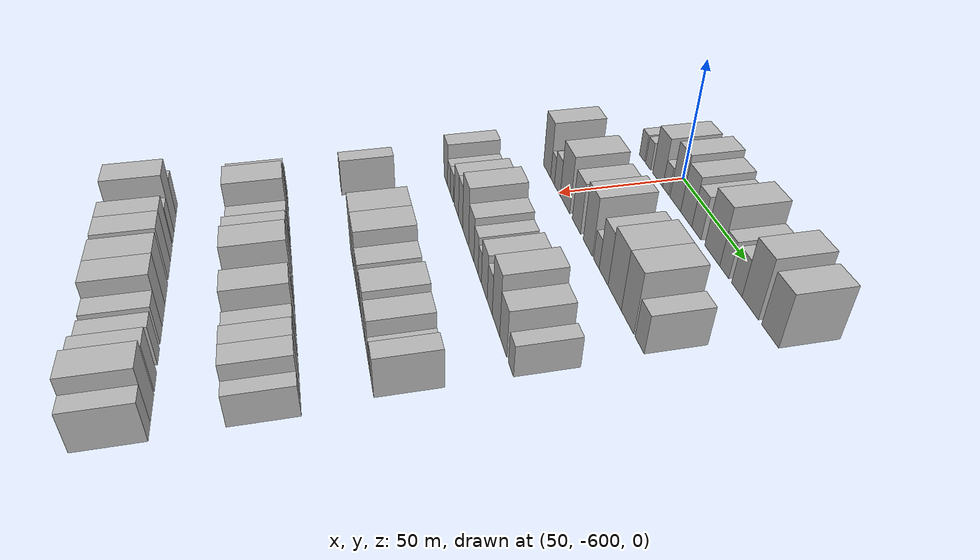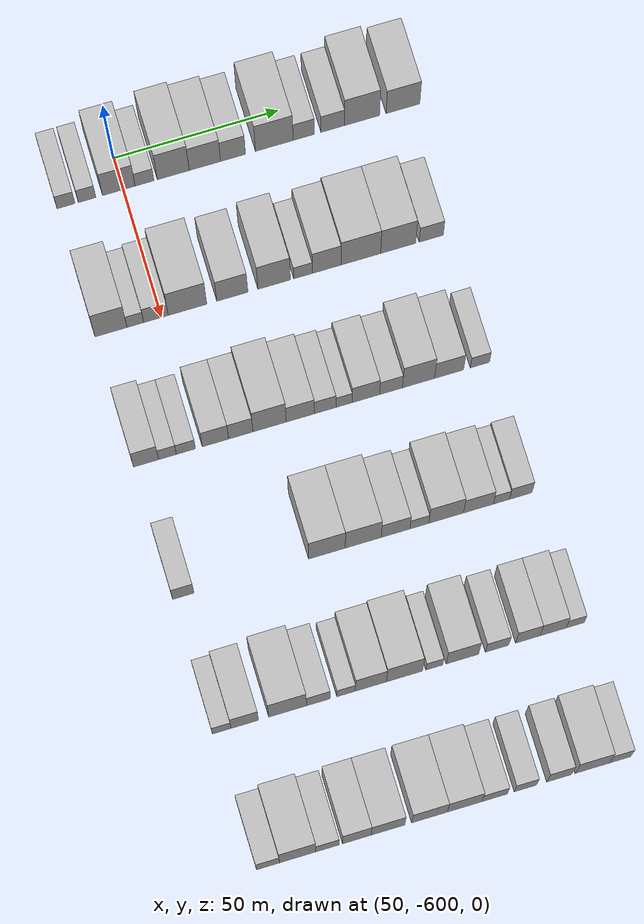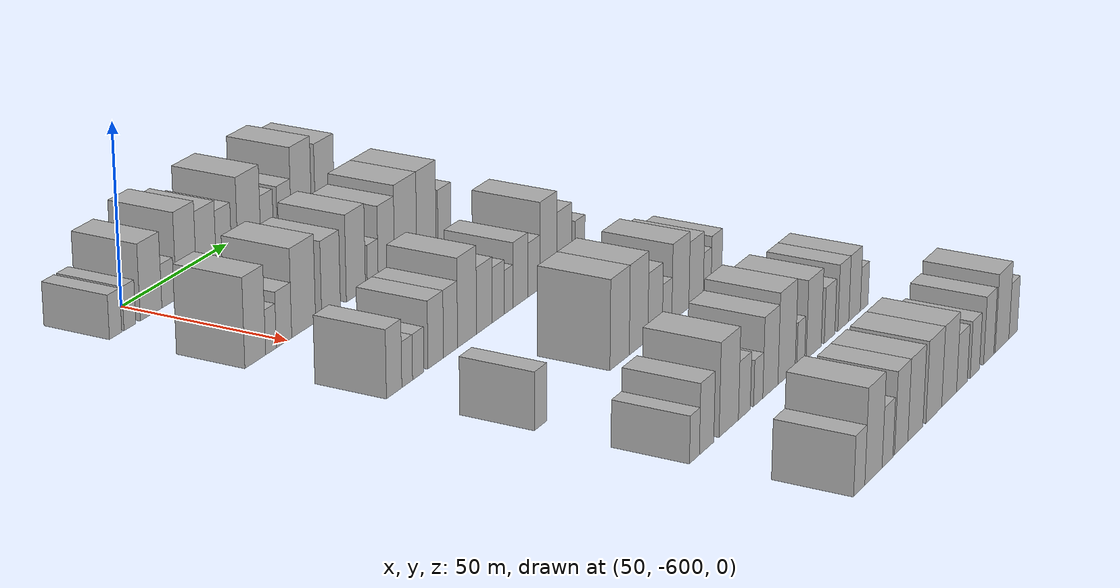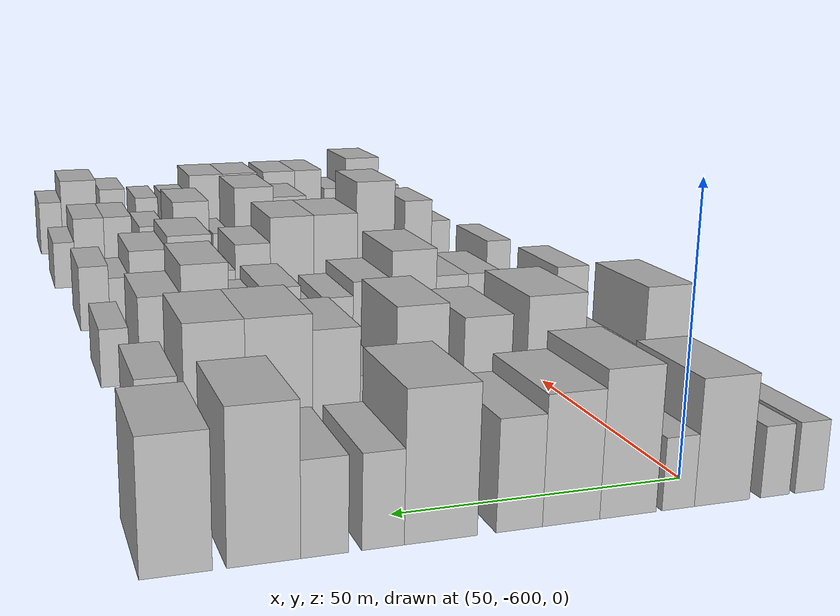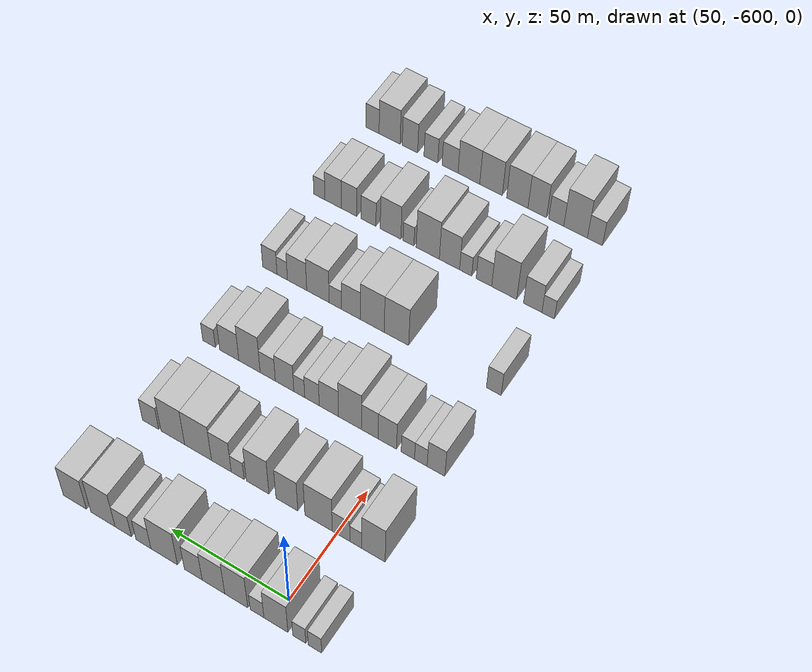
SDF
<sdf version="1.6">
 <world name="default">
  <model name="building_1">
   <static>1</static>
   <pose>50.0000 -617.2801 0 0.000000 0.000000 0.000000</pose>
   <link name="link">
    <pose>0 0 6.00 0 0 0</pose>
    <collision name="collision"><geometry><box><size>20.0000 5.4398 12.0000</size></box></geometry></collision>
    <visual name="visual">
     <cast_shadows>0</cast_shadows>
     <geometry><box><size>20.0000 5.4398 12.0000</size></box></geometry>
     <material>
      <script>
       <uri>model://HANNAS_wall/materials/scripts</uri>
       <uri>model://HANNAS_wall/materials/textures</uri>
       <name>vrc/HANNAS_wall</name>
      </script>
     </material>
    </visual>
   </link>
  </model>
  <model name="building_2">
   <static>1</static>
   <pose>50.0000 -610.9079 0 0.000000 0.000000 0.000000</pose>
   <link name="link">
    <pose>0 0 6.00 0 0 0</pose>
    <collision name="collision"><geometry><box><size>20.0000 5.3046 12.0000</size></box></geometry></collision>
    <visual name="visual">
     <cast_shadows>0</cast_shadows>
     <geometry><box><size>20.0000 5.3046 12.0000</size></box></geometry>
     <material>
      <script>
       <uri>model://HANNAS_wall/materials/scripts</uri>
       <uri>model://HANNAS_wall/materials/textures</uri>
       <name>vrc/HANNAS_wall</name>
      </script>
     </material>
    </visual>
   </link>
  </model>
  <model name="building_3">
   <static>1</static>
   <pose>50.0000 -601.3208 0 0.000000 0.000000 0.000000</pose>
   <link name="link">
    <pose>0 0 10.50 0 0 0</pose>
    <collision name="collision"><geometry><box><size>20.0000 9.8697 21.0000</size></box></geometry></collision>
    <visual name="visual">
     <cast_shadows>0</cast_shadows>
     <geometry><box><size>20.0000 9.8697 21.0000</size></box></geometry>
     <material>
      <script>
       <uri>model://HANNAS_wall/materials/scripts</uri>
       <uri>model://HANNAS_wall/materials/textures</uri>
       <name>vrc/HANNAS_wall</name>
      </script>
     </material>
    </visual>
   </link>
  </model>
  <model name="building_4">
   <static>1</static>
   <pose>50.0000 -593.5376 0 0.000000 0.000000 0.000000</pose>
   <link name="link">
    <pose>0 0 6.00 0 0 0</pose>
    <collision name="collision"><geometry><box><size>20.0000 5.6966 12.0000</size></box></geometry></collision>
    <visual name="visual">
     <cast_shadows>0</cast_shadows>
     <geometry><box><size>20.0000 5.6966 12.0000</size></box></geometry>
     <material>
      <script>
       <uri>model://HANNAS_wall/materials/scripts</uri>
       <uri>model://HANNAS_wall/materials/textures</uri>
       <name>vrc/HANNAS_wall</name>
      </script>
     </material>
    </visual>
   </link>
  </model>
  <model name="building_5">
   <static>1</static>
   <pose>50.0000 -584.8576 0 0.000000 0.000000 0.000000</pose>
   <link name="link">
    <pose>0 0 12.00 0 0 0</pose>
    <collision name="collision"><geometry><box><size>20.0000 9.6634 24.0000</size></box></geometry></collision>
    <visual name="visual">
     <cast_shadows>0</cast_shadows>
     <geometry><box><size>20.0000 9.6634 24.0000</size></box></geometry>
     <material>
      <script>
       <uri>model://HANNAS_wall/materials/scripts</uri>
       <uri>model://HANNAS_wall/materials/textures</uri>
       <name>vrc/HANNAS_wall</name>
      </script>
     </material>
    </visual>
   </link>
  </model>
  <model name="building_6">
   <static>1</static>
   <pose>50.0000 -575.2569 0 0.000000 0.000000 0.000000</pose>
   <link name="link">
    <pose>0 0 10.50 0 0 0</pose>
    <collision name="collision"><geometry><box><size>20.0000 9.5381 21.0000</size></box></geometry></collision>
    <visual name="visual">
     <cast_shadows>0</cast_shadows>
     <geometry><box><size>20.0000 9.5381 21.0000</size></box></geometry>
     <material>
      <script>
       <uri>model://HANNAS_wall/materials/scripts</uri>
       <uri>model://HANNAS_wall/materials/textures</uri>
       <name>vrc/HANNAS_wall</name>
      </script>
     </material>
    </visual>
   </link>
  </model>
  <model name="building_7">
   <static>1</static>
   <pose>50.0000 -566.7145 0 0.000000 0.000000 0.000000</pose>
   <link name="link">
    <pose>0 0 9.00 0 0 0</pose>
    <collision name="collision"><geometry><box><size>20.0000 7.5467 18.0000</size></box></geometry></collision>
    <visual name="visual">
     <cast_shadows>0</cast_shadows>
     <geometry><box><size>20.0000 7.5467 18.0000</size></box></geometry>
     <material>
      <script>
       <uri>model://HANNAS_wall/materials/scripts</uri>
       <uri>model://HANNAS_wall/materials/textures</uri>
       <name>vrc/HANNAS_wall</name>
      </script>
     </material>
    </visual>
   </link>
  </model>
  <model name="building_8">
   <static>1</static>
   <pose>50.0000 -554.2117 0 0.000000 0.000000 0.000000</pose>
   <link name="link">
    <pose>0 0 12.00 0 0 0</pose>
    <collision name="collision"><geometry><box><size>20.0000 11.4588 24.0000</size></box></geometry></collision>
    <visual name="visual">
     <cast_shadows>0</cast_shadows>
     <geometry><box><size>20.0000 11.4588 24.0000</size></box></geometry>
     <material>
      <script>
       <uri>model://HANNAS_wall/materials/scripts</uri>
       <uri>model://HANNAS_wall/materials/textures</uri>
       <name>vrc/HANNAS_wall</name>
      </script>
     </material>
    </visual>
   </link>
  </model>
  <model name="building_9">
   <static>1</static>
   <pose>50.0000 -545.2420 0 0.000000 0.000000 0.000000</pose>
   <link name="link">
    <pose>0 0 7.50 0 0 0</pose>
    <collision name="collision"><geometry><box><size>20.0000 6.4806 15.0000</size></box></geometry></collision>
    <visual name="visual">
     <cast_shadows>0</cast_shadows>
     <geometry><box><size>20.0000 6.4806 15.0000</size></box></geometry>
     <material>
      <script>
       <uri>model://HANNAS_wall/materials/scripts</uri>
       <uri>model://HANNAS_wall/materials/textures</uri>
       <name>vrc/HANNAS_wall</name>
      </script>
     </material>
    </visual>
   </link>
  </model>
  <model name="building_10">
   <static>1</static>
   <pose>50.0000 -536.4293 0 0.000000 0.000000 0.000000</pose>
   <link name="link">
    <pose>0 0 7.50 0 0 0</pose>
    <collision name="collision"><geometry><box><size>20.0000 7.1450 15.0000</size></box></geometry></collision>
    <visual name="visual">
     <cast_shadows>0</cast_shadows>
     <geometry><box><size>20.0000 7.1450 15.0000</size></box></geometry>
     <material>
      <script>
       <uri>model://HANNAS_wall/materials/scripts</uri>
       <uri>model://HANNAS_wall/materials/textures</uri>
       <name>vrc/HANNAS_wall</name>
      </script>
     </material>
    </visual>
   </link>
  </model>
  <model name="building_11">
   <static>1</static>
   <pose>50.0000 -527.5019 0 0.000000 0.000000 0.000000</pose>
   <link name="link">
    <pose>0 0 12.00 0 0 0</pose>
    <collision name="collision"><geometry><box><size>20.0000 10.7098 24.0000</size></box></geometry></collision>
    <visual name="visual">
     <cast_shadows>0</cast_shadows>
     <geometry><box><size>20.0000 10.7098 24.0000</size></box></geometry>
     <material>
      <script>
       <uri>model://HANNAS_wall/materials/scripts</uri>
       <uri>model://HANNAS_wall/materials/textures</uri>
       <name>vrc/HANNAS_wall</name>
      </script>
     </material>
    </visual>
   </link>
  </model>
  <model name="building_12">
   <static>1</static>
   <pose>50.0000 -514.9987 0 0.000000 0.000000 0.000000</pose>
   <link name="link">
    <pose>0 0 10.50 0 0 0</pose>
    <collision name="collision"><geometry><box><size>20.0000 10.2964 21.0000</size></box></geometry></collision>
    <visual name="visual">
     <cast_shadows>0</cast_shadows>
     <geometry><box><size>20.0000 10.2964 21.0000</size></box></geometry>
     <material>
      <script>
       <uri>model://HANNAS_wall/materials/scripts</uri>
       <uri>model://HANNAS_wall/materials/textures</uri>
       <name>vrc/HANNAS_wall</name>
      </script>
     </material>
    </visual>
   </link>
  </model>
  <model name="building_140">
   <static>1</static>
   <pose>90.0000 -615.1936 0 0.000000 0.000000 0.000000</pose>
   <link name="link">
    <pose>0 0 12.00 0 0 0</pose>
    <collision name="collision"><geometry><box><size>20.0000 9.6129 24.0000</size></box></geometry></collision>
    <visual name="visual">
     <cast_shadows>0</cast_shadows>
     <geometry><box><size>20.0000 9.6129 24.0000</size></box></geometry>
     <material>
      <script>
       <uri>model://HANNAS_wall/materials/scripts</uri>
       <uri>model://HANNAS_wall/materials/textures</uri>
       <name>vrc/HANNAS_wall</name>
      </script>
     </material>
    </visual>
   </link>
  </model>
  <model name="building_141">
   <static>1</static>
   <pose>90.0000 -607.8768 0 0.000000 0.000000 0.000000</pose>
   <link name="link">
    <pose>0 0 6.00 0 0 0</pose>
    <collision name="collision"><geometry><box><size>20.0000 5.0206 12.0000</size></box></geometry></collision>
    <visual name="visual">
     <cast_shadows>0</cast_shadows>
     <geometry><box><size>20.0000 5.0206 12.0000</size></box></geometry>
     <material>
      <script>
       <uri>model://HANNAS_wall/materials/scripts</uri>
       <uri>model://HANNAS_wall/materials/textures</uri>
       <name>vrc/HANNAS_wall</name>
      </script>
     </material>
    </visual>
   </link>
  </model>
  <model name="building_142">
   <static>1</static>
   <pose>90.0000 -601.6923 0 0.000000 0.000000 0.000000</pose>
   <link name="link">
    <pose>0 0 7.50 0 0 0</pose>
    <collision name="collision"><geometry><box><size>20.0000 7.3483 15.0000</size></box></geometry></collision>
    <visual name="visual">
     <cast_shadows>0</cast_shadows>
     <geometry><box><size>20.0000 7.3483 15.0000</size></box></geometry>
     <material>
      <script>
       <uri>model://HANNAS_wall/materials/scripts</uri>
       <uri>model://HANNAS_wall/materials/textures</uri>
       <name>vrc/HANNAS_wall</name>
      </script>
     </material>
    </visual>
   </link>
  </model>
  <model name="building_143">
   <static>1</static>
   <pose>90.0000 -592.2293 0 0.000000 0.000000 0.000000</pose>
   <link name="link">
    <pose>0 0 12.00 0 0 0</pose>
    <collision name="collision"><geometry><box><size>20.0000 11.5779 24.0000</size></box></geometry></collision>
    <visual name="visual">
     <cast_shadows>0</cast_shadows>
     <geometry><box><size>20.0000 11.5779 24.0000</size></box></geometry>
     <material>
      <script>
       <uri>model://HANNAS_wall/materials/scripts</uri>
       <uri>model://HANNAS_wall/materials/textures</uri>
       <name>vrc/HANNAS_wall</name>
      </script>
     </material>
    </visual>
   </link>
  </model>
  <model name="building_144">
   <static>1</static>
   <pose>90.0000 -578.7585 0 0.000000 0.000000 0.000000</pose>
   <link name="link">
    <pose>0 0 10.50 0 0 0</pose>
    <collision name="collision"><geometry><box><size>20.0000 9.3637 21.0000</size></box></geometry></collision>
    <visual name="visual">
     <cast_shadows>0</cast_shadows>
     <geometry><box><size>20.0000 9.3637 21.0000</size></box></geometry>
     <material>
      <script>
       <uri>model://HANNAS_wall/materials/scripts</uri>
       <uri>model://HANNAS_wall/materials/textures</uri>
       <name>vrc/HANNAS_wall</name>
      </script>
     </material>
    </visual>
   </link>
  </model>
  <model name="building_145">
   <static>1</static>
   <pose>90.0000 -566.1834 0 0.000000 0.000000 0.000000</pose>
   <link name="link">
    <pose>0 0 12.00 0 0 0</pose>
    <collision name="collision"><geometry><box><size>20.0000 9.7865 24.0000</size></box></geometry></collision>
    <visual name="visual">
     <cast_shadows>0</cast_shadows>
     <geometry><box><size>20.0000 9.7865 24.0000</size></box></geometry>
     <material>
      <script>
       <uri>model://HANNAS_wall/materials/scripts</uri>
       <uri>model://HANNAS_wall/materials/textures</uri>
       <name>vrc/HANNAS_wall</name>
      </script>
     </material>
    </visual>
   </link>
  </model>
  <model name="building_146">
   <static>1</static>
   <pose>90.0000 -557.4782 0 0.000000 0.000000 0.000000</pose>
   <link name="link">
    <pose>0 0 6.00 0 0 0</pose>
    <collision name="collision"><geometry><box><size>20.0000 5.6238 12.0000</size></box></geometry></collision>
    <visual name="visual">
     <cast_shadows>0</cast_shadows>
     <geometry><box><size>20.0000 5.6238 12.0000</size></box></geometry>
     <material>
      <script>
       <uri>model://HANNAS_wall/materials/scripts</uri>
       <uri>model://HANNAS_wall/materials/textures</uri>
       <name>vrc/HANNAS_wall</name>
      </script>
     </material>
    </visual>
   </link>
  </model>
  <model name="building_147">
   <static>1</static>
   <pose>90.0000 -550.3209 0 0.000000 0.000000 0.000000</pose>
   <link name="link">
    <pose>0 0 10.50 0 0 0</pose>
    <collision name="collision"><geometry><box><size>20.0000 8.6909 21.0000</size></box></geometry></collision>
    <visual name="visual">
     <cast_shadows>0</cast_shadows>
     <geometry><box><size>20.0000 8.6909 21.0000</size></box></geometry>
     <material>
      <script>
       <uri>model://HANNAS_wall/materials/scripts</uri>
       <uri>model://HANNAS_wall/materials/textures</uri>
       <name>vrc/HANNAS_wall</name>
      </script>
     </material>
    </visual>
   </link>
  </model>
  <model name="building_148">
   <static>1</static>
   <pose>90.0000 -540.0085 0 0.000000 0.000000 0.000000</pose>
   <link name="link">
    <pose>0 0 12.00 0 0 0</pose>
    <collision name="collision"><geometry><box><size>20.0000 11.9338 24.0000</size></box></geometry></collision>
    <visual name="visual">
     <cast_shadows>0</cast_shadows>
     <geometry><box><size>20.0000 11.9338 24.0000</size></box></geometry>
     <material>
      <script>
       <uri>model://HANNAS_wall/materials/scripts</uri>
       <uri>model://HANNAS_wall/materials/textures</uri>
       <name>vrc/HANNAS_wall</name>
      </script>
     </material>
    </visual>
   </link>
  </model>
  <model name="building_149">
   <static>1</static>
   <pose>90.0000 -528.7111 0 0.000000 0.000000 0.000000</pose>
   <link name="link">
    <pose>0 0 12.00 0 0 0</pose>
    <collision name="collision"><geometry><box><size>20.0000 10.6609 24.0000</size></box></geometry></collision>
    <visual name="visual">
     <cast_shadows>0</cast_shadows>
     <geometry><box><size>20.0000 10.6609 24.0000</size></box></geometry>
     <material>
      <script>
       <uri>model://HANNAS_wall/materials/scripts</uri>
       <uri>model://HANNAS_wall/materials/textures</uri>
       <name>vrc/HANNAS_wall</name>
      </script>
     </material>
    </visual>
   </link>
  </model>
  <model name="building_150">
   <static>1</static>
   <pose>90.0000 -518.7226 0 0.000000 0.000000 0.000000</pose>
   <link name="link">
    <pose>0 0 7.50 0 0 0</pose>
    <collision name="collision"><geometry><box><size>20.0000 7.3162 15.0000</size></box></geometry></collision>
    <visual name="visual">
     <cast_shadows>0</cast_shadows>
     <geometry><box><size>20.0000 7.3162 15.0000</size></box></geometry>
     <material>
      <script>
       <uri>model://HANNAS_wall/materials/scripts</uri>
       <uri>model://HANNAS_wall/materials/textures</uri>
       <name>vrc/HANNAS_wall</name>
      </script>
     </material>
    </visual>
   </link>
  </model>
  <model name="building_280">
   <static>1</static>
   <pose>130.0000 -616.2573 0 0.000000 0.000000 0.000000</pose>
   <link name="link">
    <pose>0 0 9.00 0 0 0</pose>
    <collision name="collision"><geometry><box><size>20.0000 7.4855 18.0000</size></box></geometry></collision>
    <visual name="visual">
     <cast_shadows>0</cast_shadows>
     <geometry><box><size>20.0000 7.4855 18.0000</size></box></geometry>
     <material>
      <script>
       <uri>model://HANNAS_wall/materials/scripts</uri>
       <uri>model://HANNAS_wall/materials/textures</uri>
       <name>vrc/HANNAS_wall</name>
      </script>
     </material>
    </visual>
   </link>
  </model>
  <model name="building_281">
   <static>1</static>
   <pose>130.0000 -609.8738 0 0.000000 0.000000 0.000000</pose>
   <link name="link">
    <pose>0 0 6.00 0 0 0</pose>
    <collision name="collision"><geometry><box><size>20.0000 5.2815 12.0000</size></box></geometry></collision>
    <visual name="visual">
     <cast_shadows>0</cast_shadows>
     <geometry><box><size>20.0000 5.2815 12.0000</size></box></geometry>
     <material>
      <script>
       <uri>model://HANNAS_wall/materials/scripts</uri>
       <uri>model://HANNAS_wall/materials/textures</uri>
       <name>vrc/HANNAS_wall</name>
      </script>
     </material>
    </visual>
   </link>
  </model>
  <model name="building_282">
   <static>1</static>
   <pose>130.0000 -604.3927 0 0.000000 0.000000 0.000000</pose>
   <link name="link">
    <pose>0 0 6.00 0 0 0</pose>
    <collision name="collision"><geometry><box><size>20.0000 5.6806 12.0000</size></box></geometry></collision>
    <visual name="visual">
     <cast_shadows>0</cast_shadows>
     <geometry><box><size>20.0000 5.6806 12.0000</size></box></geometry>
     <material>
      <script>
       <uri>model://HANNAS_wall/materials/scripts</uri>
       <uri>model://HANNAS_wall/materials/textures</uri>
       <name>vrc/HANNAS_wall</name>
      </script>
     </material>
    </visual>
   </link>
  </model>
  <model name="building_283">
   <static>1</static>
   <pose>130.0000 -595.6169 0 0.000000 0.000000 0.000000</pose>
   <link name="link">
    <pose>0 0 9.00 0 0 0</pose>
    <collision name="collision"><geometry><box><size>20.0000 7.8711 18.0000</size></box></geometry></collision>
    <visual name="visual">
     <cast_shadows>0</cast_shadows>
     <geometry><box><size>20.0000 7.8711 18.0000</size></box></geometry>
     <material>
      <script>
       <uri>model://HANNAS_wall/materials/scripts</uri>
       <uri>model://HANNAS_wall/materials/textures</uri>
       <name>vrc/HANNAS_wall</name>
      </script>
     </material>
    </visual>
   </link>
  </model>
  <model name="building_284">
   <static>1</static>
   <pose>130.0000 -588.0575 0 0.000000 0.000000 0.000000</pose>
   <link name="link">
    <pose>0 0 9.00 0 0 0</pose>
    <collision name="collision"><geometry><box><size>20.0000 7.2476 18.0000</size></box></geometry></collision>
    <visual name="visual">
     <cast_shadows>0</cast_shadows>
     <geometry><box><size>20.0000 7.2476 18.0000</size></box></geometry>
     <material>
      <script>
       <uri>model://HANNAS_wall/materials/scripts</uri>
       <uri>model://HANNAS_wall/materials/textures</uri>
       <name>vrc/HANNAS_wall</name>
      </script>
     </material>
    </visual>
   </link>
  </model>
  <model name="building_285">
   <static>1</static>
   <pose>130.0000 -579.4634 0 0.000000 0.000000 0.000000</pose>
   <link name="link">
    <pose>0 0 12.00 0 0 0</pose>
    <collision name="collision"><geometry><box><size>20.0000 9.9407 24.0000</size></box></geometry></collision>
    <visual name="visual">
     <cast_shadows>0</cast_shadows>
     <geometry><box><size>20.0000 9.9407 24.0000</size></box></geometry>
     <material>
      <script>
       <uri>model://HANNAS_wall/materials/scripts</uri>
       <uri>model://HANNAS_wall/materials/textures</uri>
       <name>vrc/HANNAS_wall</name>
      </script>
     </material>
    </visual>
   </link>
  </model>
  <model name="building_286">
   <static>1</static>
   <pose>130.0000 -570.2737 0 0.000000 0.000000 0.000000</pose>
   <link name="link">
    <pose>0 0 9.00 0 0 0</pose>
    <collision name="collision"><geometry><box><size>20.0000 8.4388 18.0000</size></box></geometry></collision>
    <visual name="visual">
     <cast_shadows>0</cast_shadows>
     <geometry><box><size>20.0000 8.4388 18.0000</size></box></geometry>
     <material>
      <script>
       <uri>model://HANNAS_wall/materials/scripts</uri>
       <uri>model://HANNAS_wall/materials/textures</uri>
       <name>vrc/HANNAS_wall</name>
      </script>
     </material>
    </visual>
   </link>
  </model>
  <model name="building_287">
   <static>1</static>
   <pose>130.0000 -562.8476 0 0.000000 0.000000 0.000000</pose>
   <link name="link">
    <pose>0 0 7.50 0 0 0</pose>
    <collision name="collision"><geometry><box><size>20.0000 6.4135 15.0000</size></box></geometry></collision>
    <visual name="visual">
     <cast_shadows>0</cast_shadows>
     <geometry><box><size>20.0000 6.4135 15.0000</size></box></geometry>
     <material>
      <script>
       <uri>model://HANNAS_wall/materials/scripts</uri>
       <uri>model://HANNAS_wall/materials/textures</uri>
       <name>vrc/HANNAS_wall</name>
      </script>
     </material>
    </visual>
   </link>
  </model>
  <model name="building_288">
   <static>1</static>
   <pose>130.0000 -557.2206 0 0.000000 0.000000 0.000000</pose>
   <link name="link">
    <pose>0 0 6.00 0 0 0</pose>
    <collision name="collision"><geometry><box><size>20.0000 4.8404 12.0000</size></box></geometry></collision>
    <visual name="visual">
     <cast_shadows>0</cast_shadows>
     <geometry><box><size>20.0000 4.8404 12.0000</size></box></geometry>
     <material>
      <script>
       <uri>model://HANNAS_wall/materials/scripts</uri>
       <uri>model://HANNAS_wall/materials/textures</uri>
       <name>vrc/HANNAS_wall</name>
      </script>
     </material>
    </visual>
   </link>
  </model>
  <model name="building_289">
   <static>1</static>
   <pose>130.0000 -550.6675 0 0.000000 0.000000 0.000000</pose>
   <link name="link">
    <pose>0 0 9.00 0 0 0</pose>
    <collision name="collision"><geometry><box><size>20.0000 8.2659 18.0000</size></box></geometry></collision>
    <visual name="visual">
     <cast_shadows>0</cast_shadows>
     <geometry><box><size>20.0000 8.2659 18.0000</size></box></geometry>
     <material>
      <script>
       <uri>model://HANNAS_wall/materials/scripts</uri>
       <uri>model://HANNAS_wall/materials/textures</uri>
       <name>vrc/HANNAS_wall</name>
      </script>
     </material>
    </visual>
   </link>
  </model>
  <model name="building_290">
   <static>1</static>
   <pose>130.0000 -543.1122 0 0.000000 0.000000 0.000000</pose>
   <link name="link">
    <pose>0 0 7.50 0 0 0</pose>
    <collision name="collision"><geometry><box><size>20.0000 6.8448 15.0000</size></box></geometry></collision>
    <visual name="visual">
     <cast_shadows>0</cast_shadows>
     <geometry><box><size>20.0000 6.8448 15.0000</size></box></geometry>
     <material>
      <script>
       <uri>model://HANNAS_wall/materials/scripts</uri>
       <uri>model://HANNAS_wall/materials/textures</uri>
       <name>vrc/HANNAS_wall</name>
      </script>
     </material>
    </visual>
   </link>
  </model>
  <model name="building_291">
   <static>1</static>
   <pose>130.0000 -534.8694 0 0.000000 0.000000 0.000000</pose>
   <link name="link">
    <pose>0 0 12.00 0 0 0</pose>
    <collision name="collision"><geometry><box><size>20.0000 9.6409 24.0000</size></box></geometry></collision>
    <visual name="visual">
     <cast_shadows>0</cast_shadows>
     <geometry><box><size>20.0000 9.6409 24.0000</size></box></geometry>
     <material>
      <script>
       <uri>model://HANNAS_wall/materials/scripts</uri>
       <uri>model://HANNAS_wall/materials/textures</uri>
       <name>vrc/HANNAS_wall</name>
      </script>
     </material>
    </visual>
   </link>
  </model>
  <model name="building_292">
   <static>1</static>
   <pose>130.0000 -525.6858 0 0.000000 0.000000 0.000000</pose>
   <link name="link">
    <pose>0 0 9.00 0 0 0</pose>
    <collision name="collision"><geometry><box><size>20.0000 8.7263 18.0000</size></box></geometry></collision>
    <visual name="visual">
     <cast_shadows>0</cast_shadows>
     <geometry><box><size>20.0000 8.7263 18.0000</size></box></geometry>
     <material>
      <script>
       <uri>model://HANNAS_wall/materials/scripts</uri>
       <uri>model://HANNAS_wall/materials/textures</uri>
       <name>vrc/HANNAS_wall</name>
      </script>
     </material>
    </visual>
   </link>
  </model>
  <model name="building_293">
   <static>1</static>
   <pose>130.0000 -516.4279 0 0.000000 0.000000 0.000000</pose>
   <link name="link">
    <pose>0 0 6.00 0 0 0</pose>
    <collision name="collision"><geometry><box><size>20.0000 5.7895 12.0000</size></box></geometry></collision>
    <visual name="visual">
     <cast_shadows>0</cast_shadows>
     <geometry><box><size>20.0000 5.7895 12.0000</size></box></geometry>
     <material>
      <script>
       <uri>model://HANNAS_wall/materials/scripts</uri>
       <uri>model://HANNAS_wall/materials/textures</uri>
       <name>vrc/HANNAS_wall</name>
      </script>
     </material>
    </visual>
   </link>
  </model>
  <model name="building_425">
   <static>1</static>
   <pose>170.0000 -616.8483 0 0.000000 0.000000 0.000000</pose>
   <link name="link">
    <pose>0 0 7.50 0 0 0</pose>
    <collision name="collision"><geometry><box><size>20.0000 6.3035 15.0000</size></box></geometry></collision>
    <visual name="visual">
     <cast_shadows>0</cast_shadows>
     <geometry><box><size>20.0000 6.3035 15.0000</size></box></geometry>
     <material>
      <script>
       <uri>model://HANNAS_wall/materials/scripts</uri>
       <uri>model://HANNAS_wall/materials/textures</uri>
       <name>vrc/HANNAS_wall</name>
      </script>
     </material>
    </visual>
   </link>
  </model>
  <model name="building_426">
   <static>1</static>
   <pose>170.0000 -574.3927 0 0.000000 0.000000 0.000000</pose>
   <link name="link">
    <pose>0 0 12.00 0 0 0</pose>
    <collision name="collision"><geometry><box><size>20.0000 10.8692 24.0000</size></box></geometry></collision>
    <visual name="visual">
     <cast_shadows>0</cast_shadows>
     <geometry><box><size>20.0000 10.8692 24.0000</size></box></geometry>
     <material>
      <script>
       <uri>model://HANNAS_wall/materials/scripts</uri>
       <uri>model://HANNAS_wall/materials/textures</uri>
       <name>vrc/HANNAS_wall</name>
      </script>
     </material>
    </visual>
   </link>
  </model>
  <model name="building_427">
   <static>1</static>
   <pose>170.0000 -563.6000 0 0.000000 0.000000 0.000000</pose>
   <link name="link">
    <pose>0 0 12.00 0 0 0</pose>
    <collision name="collision"><geometry><box><size>20.0000 10.7162 24.0000</size></box></geometry></collision>
    <visual name="visual">
     <cast_shadows>0</cast_shadows>
     <geometry><box><size>20.0000 10.7162 24.0000</size></box></geometry>
     <material>
      <script>
       <uri>model://HANNAS_wall/materials/scripts</uri>
       <uri>model://HANNAS_wall/materials/textures</uri>
       <name>vrc/HANNAS_wall</name>
      </script>
     </material>
    </visual>
   </link>
  </model>
  <model name="building_428">
   <static>1</static>
   <pose>170.0000 -553.9817 0 0.000000 0.000000 0.000000</pose>
   <link name="link">
    <pose>0 0 9.00 0 0 0</pose>
    <collision name="collision"><geometry><box><size>20.0000 8.5204 18.0000</size></box></geometry></collision>
    <visual name="visual">
     <cast_shadows>0</cast_shadows>
     <geometry><box><size>20.0000 8.5204 18.0000</size></box></geometry>
     <material>
      <script>
       <uri>model://HANNAS_wall/materials/scripts</uri>
       <uri>model://HANNAS_wall/materials/textures</uri>
       <name>vrc/HANNAS_wall</name>
      </script>
     </material>
    </visual>
   </link>
  </model>
  <model name="building_429">
   <static>1</static>
   <pose>170.0000 -546.9246 0 0.000000 0.000000 0.000000</pose>
   <link name="link">
    <pose>0 0 6.00 0 0 0</pose>
    <collision name="collision"><geometry><box><size>20.0000 5.5938 12.0000</size></box></geometry></collision>
    <visual name="visual">
     <cast_shadows>0</cast_shadows>
     <geometry><box><size>20.0000 5.5938 12.0000</size></box></geometry>
     <material>
      <script>
       <uri>model://HANNAS_wall/materials/scripts</uri>
       <uri>model://HANNAS_wall/materials/textures</uri>
       <name>vrc/HANNAS_wall</name>
      </script>
     </material>
    </visual>
   </link>
  </model>
  <model name="building_430">
   <static>1</static>
   <pose>170.0000 -538.9637 0 0.000000 0.000000 0.000000</pose>
   <link name="link">
    <pose>0 0 10.50 0 0 0</pose>
    <collision name="collision"><geometry><box><size>20.0000 10.3280 21.0000</size></box></geometry></collision>
    <visual name="visual">
     <cast_shadows>0</cast_shadows>
     <geometry><box><size>20.0000 10.3280 21.0000</size></box></geometry>
     <material>
      <script>
       <uri>model://HANNAS_wall/materials/scripts</uri>
       <uri>model://HANNAS_wall/materials/textures</uri>
       <name>vrc/HANNAS_wall</name>
      </script>
     </material>
    </visual>
   </link>
  </model>
  <model name="building_431">
   <static>1</static>
   <pose>170.0000 -529.3490 0 0.000000 0.000000 0.000000</pose>
   <link name="link">
    <pose>0 0 9.00 0 0 0</pose>
    <collision name="collision"><geometry><box><size>20.0000 8.9014 18.0000</size></box></geometry></collision>
    <visual name="visual">
     <cast_shadows>0</cast_shadows>
     <geometry><box><size>20.0000 8.9014 18.0000</size></box></geometry>
     <material>
      <script>
       <uri>model://HANNAS_wall/materials/scripts</uri>
       <uri>model://HANNAS_wall/materials/textures</uri>
       <name>vrc/HANNAS_wall</name>
      </script>
     </material>
    </visual>
   </link>
  </model>
  <model name="building_432">
   <static>1</static>
   <pose>170.0000 -522.4739 0 0.000000 0.000000 0.000000</pose>
   <link name="link">
    <pose>0 0 6.00 0 0 0</pose>
    <collision name="collision"><geometry><box><size>20.0000 4.8488 12.0000</size></box></geometry></collision>
    <visual name="visual">
     <cast_shadows>0</cast_shadows>
     <geometry><box><size>20.0000 4.8488 12.0000</size></box></geometry>
     <material>
      <script>
       <uri>model://HANNAS_wall/materials/scripts</uri>
       <uri>model://HANNAS_wall/materials/textures</uri>
       <name>vrc/HANNAS_wall</name>
      </script>
     </material>
    </visual>
   </link>
  </model>
  <model name="building_433">
   <static>1</static>
   <pose>170.0000 -516.6958 0 0.000000 0.000000 0.000000</pose>
   <link name="link">
    <pose>0 0 7.50 0 0 0</pose>
    <collision name="collision"><geometry><box><size>20.0000 6.7074 15.0000</size></box></geometry></collision>
    <visual name="visual">
     <cast_shadows>0</cast_shadows>
     <geometry><box><size>20.0000 6.7074 15.0000</size></box></geometry>
     <material>
      <script>
       <uri>model://HANNAS_wall/materials/scripts</uri>
       <uri>model://HANNAS_wall/materials/textures</uri>
       <name>vrc/HANNAS_wall</name>
      </script>
     </material>
    </visual>
   </link>
  </model>
  <model name="building_570">
   <static>1</static>
   <pose>210.0000 -617.2837 0 0.000000 0.000000 0.000000</pose>
   <link name="link">
    <pose>0 0 6.00 0 0 0</pose>
    <collision name="collision"><geometry><box><size>20.0000 5.4326 12.0000</size></box></geometry></collision>
    <visual name="visual">
     <cast_shadows>0</cast_shadows>
     <geometry><box><size>20.0000 5.4326 12.0000</size></box></geometry>
     <material>
      <script>
       <uri>model://HANNAS_wall/materials/scripts</uri>
       <uri>model://HANNAS_wall/materials/textures</uri>
       <name>vrc/HANNAS_wall</name>
      </script>
     </material>
    </visual>
   </link>
  </model>
  <model name="building_571">
   <static>1</static>
   <pose>210.0000 -610.5529 0 0.000000 0.000000 0.000000</pose>
   <link name="link">
    <pose>0 0 9.00 0 0 0</pose>
    <collision name="collision"><geometry><box><size>20.0000 8.0291 18.0000</size></box></geometry></collision>
    <visual name="visual">
     <cast_shadows>0</cast_shadows>
     <geometry><box><size>20.0000 8.0291 18.0000</size></box></geometry>
     <material>
      <script>
       <uri>model://HANNAS_wall/materials/scripts</uri>
       <uri>model://HANNAS_wall/materials/textures</uri>
       <name>vrc/HANNAS_wall</name>
      </script>
     </material>
    </visual>
   </link>
  </model>
  <model name="building_572">
   <static>1</static>
   <pose>210.0000 -597.9967 0 0.000000 0.000000 0.000000</pose>
   <link name="link">
    <pose>0 0 12.00 0 0 0</pose>
    <collision name="collision"><geometry><box><size>20.0000 11.0832 24.0000</size></box></geometry></collision>
    <visual name="visual">
     <cast_shadows>0</cast_shadows>
     <geometry><box><size>20.0000 11.0832 24.0000</size></box></geometry>
     <material>
      <script>
       <uri>model://HANNAS_wall/materials/scripts</uri>
       <uri>model://HANNAS_wall/materials/textures</uri>
       <name>vrc/HANNAS_wall</name>
      </script>
     </material>
    </visual>
   </link>
  </model>
  <model name="building_573">
   <static>1</static>
   <pose>210.0000 -588.9961 0 0.000000 0.000000 0.000000</pose>
   <link name="link">
    <pose>0 0 7.50 0 0 0</pose>
    <collision name="collision"><geometry><box><size>20.0000 6.9182 15.0000</size></box></geometry></collision>
    <visual name="visual">
     <cast_shadows>0</cast_shadows>
     <geometry><box><size>20.0000 6.9182 15.0000</size></box></geometry>
     <material>
      <script>
       <uri>model://HANNAS_wall/materials/scripts</uri>
       <uri>model://HANNAS_wall/materials/textures</uri>
       <name>vrc/HANNAS_wall</name>
      </script>
     </material>
    </visual>
   </link>
  </model>
  <model name="building_574">
   <static>1</static>
   <pose>210.0000 -580.8148 0 0.000000 0.000000 0.000000</pose>
   <link name="link">
    <pose>0 0 6.00 0 0 0</pose>
    <collision name="collision"><geometry><box><size>20.0000 5.4444 12.0000</size></box></geometry></collision>
    <visual name="visual">
     <cast_shadows>0</cast_shadows>
     <geometry><box><size>20.0000 5.4444 12.0000</size></box></geometry>
     <material>
      <script>
       <uri>model://HANNAS_wall/materials/scripts</uri>
       <uri>model://HANNAS_wall/materials/textures</uri>
       <name>vrc/HANNAS_wall</name>
      </script>
     </material>
    </visual>
   </link>
  </model>
  <model name="building_575">
   <static>1</static>
   <pose>210.0000 -573.5109 0 0.000000 0.000000 0.000000</pose>
   <link name="link">
    <pose>0 0 10.50 0 0 0</pose>
    <collision name="collision"><geometry><box><size>20.0000 9.1635 21.0000</size></box></geometry></collision>
    <visual name="visual">
     <cast_shadows>0</cast_shadows>
     <geometry><box><size>20.0000 9.1635 21.0000</size></box></geometry>
     <material>
      <script>
       <uri>model://HANNAS_wall/materials/scripts</uri>
       <uri>model://HANNAS_wall/materials/textures</uri>
       <name>vrc/HANNAS_wall</name>
      </script>
     </material>
    </visual>
   </link>
  </model>
  <model name="building_576">
   <static>1</static>
   <pose>210.0000 -563.6292 0 0.000000 0.000000 0.000000</pose>
   <link name="link">
    <pose>0 0 12.00 0 0 0</pose>
    <collision name="collision"><geometry><box><size>20.0000 10.6000 24.0000</size></box></geometry></collision>
    <visual name="visual">
     <cast_shadows>0</cast_shadows>
     <geometry><box><size>20.0000 10.6000 24.0000</size></box></geometry>
     <material>
      <script>
       <uri>model://HANNAS_wall/materials/scripts</uri>
       <uri>model://HANNAS_wall/materials/textures</uri>
       <name>vrc/HANNAS_wall</name>
      </script>
     </material>
    </visual>
   </link>
  </model>
  <model name="building_577">
   <static>1</static>
   <pose>210.0000 -554.8357 0 0.000000 0.000000 0.000000</pose>
   <link name="link">
    <pose>0 0 6.00 0 0 0</pose>
    <collision name="collision"><geometry><box><size>20.0000 4.9869 12.0000</size></box></geometry></collision>
    <visual name="visual">
     <cast_shadows>0</cast_shadows>
     <geometry><box><size>20.0000 4.9869 12.0000</size></box></geometry>
     <material>
      <script>
       <uri>model://HANNAS_wall/materials/scripts</uri>
       <uri>model://HANNAS_wall/materials/textures</uri>
       <name>vrc/HANNAS_wall</name>
      </script>
     </material>
    </visual>
   </link>
  </model>
  <model name="building_578">
   <static>1</static>
   <pose>210.0000 -546.5599 0 0.000000 0.000000 0.000000</pose>
   <link name="link">
    <pose>0 0 10.50 0 0 0</pose>
    <collision name="collision"><geometry><box><size>20.0000 9.5647 21.0000</size></box></geometry></collision>
    <visual name="visual">
     <cast_shadows>0</cast_shadows>
     <geometry><box><size>20.0000 9.5647 21.0000</size></box></geometry>
     <material>
      <script>
       <uri>model://HANNAS_wall/materials/scripts</uri>
       <uri>model://HANNAS_wall/materials/textures</uri>
       <name>vrc/HANNAS_wall</name>
      </script>
     </material>
    </visual>
   </link>
  </model>
  <model name="building_579">
   <static>1</static>
   <pose>210.0000 -536.3111 0 0.000000 0.000000 0.000000</pose>
   <link name="link">
    <pose>0 0 7.50 0 0 0</pose>
    <collision name="collision"><geometry><box><size>20.0000 6.9329 15.0000</size></box></geometry></collision>
    <visual name="visual">
     <cast_shadows>0</cast_shadows>
     <geometry><box><size>20.0000 6.9329 15.0000</size></box></geometry>
     <material>
      <script>
       <uri>model://HANNAS_wall/materials/scripts</uri>
       <uri>model://HANNAS_wall/materials/textures</uri>
       <name>vrc/HANNAS_wall</name>
      </script>
     </material>
    </visual>
   </link>
  </model>
  <model name="building_580">
   <static>1</static>
   <pose>210.0000 -527.2175 0 0.000000 0.000000 0.000000</pose>
   <link name="link">
    <pose>0 0 9.00 0 0 0</pose>
    <collision name="collision"><geometry><box><size>20.0000 7.2542 18.0000</size></box></geometry></collision>
    <visual name="visual">
     <cast_shadows>0</cast_shadows>
     <geometry><box><size>20.0000 7.2542 18.0000</size></box></geometry>
     <material>
      <script>
       <uri>model://HANNAS_wall/materials/scripts</uri>
       <uri>model://HANNAS_wall/materials/textures</uri>
       <name>vrc/HANNAS_wall</name>
      </script>
     </material>
    </visual>
   </link>
  </model>
  <model name="building_581">
   <static>1</static>
   <pose>210.0000 -519.7005 0 0.000000 0.000000 0.000000</pose>
   <link name="link">
    <pose>0 0 9.00 0 0 0</pose>
    <collision name="collision"><geometry><box><size>20.0000 7.7799 18.0000</size></box></geometry></collision>
    <visual name="visual">
     <cast_shadows>0</cast_shadows>
     <geometry><box><size>20.0000 7.7799 18.0000</size></box></geometry>
     <material>
      <script>
       <uri>model://HANNAS_wall/materials/scripts</uri>
       <uri>model://HANNAS_wall/materials/textures</uri>
       <name>vrc/HANNAS_wall</name>
      </script>
     </material>
    </visual>
   </link>
  </model>
  <model name="building_582">
   <static>1</static>
   <pose>210.0000 -513.1430 0 0.000000 0.000000 0.000000</pose>
   <link name="link">
    <pose>0 0 6.00 0 0 0</pose>
    <collision name="collision"><geometry><box><size>20.0000 5.3351 12.0000</size></box></geometry></collision>
    <visual name="visual">
     <cast_shadows>0</cast_shadows>
     <geometry><box><size>20.0000 5.3351 12.0000</size></box></geometry>
     <material>
      <script>
       <uri>model://HANNAS_wall/materials/scripts</uri>
       <uri>model://HANNAS_wall/materials/textures</uri>
       <name>vrc/HANNAS_wall</name>
      </script>
     </material>
    </visual>
   </link>
  </model>
  <model name="building_715">
   <static>1</static>
   <pose>250.0000 -615.6459 0 0.000000 0.000000 0.000000</pose>
   <link name="link">
    <pose>0 0 7.50 0 0 0</pose>
    <collision name="collision"><geometry><box><size>20.0000 6.7081 15.0000</size></box></geometry></collision>
    <visual name="visual">
     <cast_shadows>0</cast_shadows>
     <geometry><box><size>20.0000 6.7081 15.0000</size></box></geometry>
     <material>
      <script>
       <uri>model://HANNAS_wall/materials/scripts</uri>
       <uri>model://HANNAS_wall/materials/textures</uri>
       <name>vrc/HANNAS_wall</name>
      </script>
     </material>
    </visual>
   </link>
  </model>
  <model name="building_716">
   <static>1</static>
   <pose>250.0000 -607.0225 0 0.000000 0.000000 0.000000</pose>
   <link name="link">
    <pose>0 0 12.00 0 0 0</pose>
    <collision name="collision"><geometry><box><size>20.0000 10.5388 24.0000</size></box></geometry></collision>
    <visual name="visual">
     <cast_shadows>0</cast_shadows>
     <geometry><box><size>20.0000 10.5388 24.0000</size></box></geometry>
     <material>
      <script>
       <uri>model://HANNAS_wall/materials/scripts</uri>
       <uri>model://HANNAS_wall/materials/textures</uri>
       <name>vrc/HANNAS_wall</name>
      </script>
     </material>
    </visual>
   </link>
  </model>
  <model name="building_717">
   <static>1</static>
   <pose>250.0000 -598.3707 0 0.000000 0.000000 0.000000</pose>
   <link name="link">
    <pose>0 0 7.50 0 0 0</pose>
    <collision name="collision"><geometry><box><size>20.0000 6.7648 15.0000</size></box></geometry></collision>
    <visual name="visual">
     <cast_shadows>0</cast_shadows>
     <geometry><box><size>20.0000 6.7648 15.0000</size></box></geometry>
     <material>
      <script>
       <uri>model://HANNAS_wall/materials/scripts</uri>
       <uri>model://HANNAS_wall/materials/textures</uri>
       <name>vrc/HANNAS_wall</name>
      </script>
     </material>
    </visual>
   </link>
  </model>
  <model name="building_718">
   <static>1</static>
   <pose>250.0000 -589.7866 0 0.000000 0.000000 0.000000</pose>
   <link name="link">
    <pose>0 0 10.50 0 0 0</pose>
    <collision name="collision"><geometry><box><size>20.0000 8.4034 21.0000</size></box></geometry></collision>
    <visual name="visual">
     <cast_shadows>0</cast_shadows>
     <geometry><box><size>20.0000 8.4034 21.0000</size></box></geometry>
     <material>
      <script>
       <uri>model://HANNAS_wall/materials/scripts</uri>
       <uri>model://HANNAS_wall/materials/textures</uri>
       <name>vrc/HANNAS_wall</name>
      </script>
     </material>
    </visual>
   </link>
  </model>
  <model name="building_719">
   <static>1</static>
   <pose>250.0000 -580.7145 0 0.000000 0.000000 0.000000</pose>
   <link name="link">
    <pose>0 0 10.50 0 0 0</pose>
    <collision name="collision"><geometry><box><size>20.0000 9.7408 21.0000</size></box></geometry></collision>
    <visual name="visual">
     <cast_shadows>0</cast_shadows>
     <geometry><box><size>20.0000 9.7408 21.0000</size></box></geometry>
     <material>
      <script>
       <uri>model://HANNAS_wall/materials/scripts</uri>
       <uri>model://HANNAS_wall/materials/textures</uri>
       <name>vrc/HANNAS_wall</name>
      </script>
     </material>
    </visual>
   </link>
  </model>
  <model name="building_720">
   <static>1</static>
   <pose>250.0000 -568.6202 0 0.000000 0.000000 0.000000</pose>
   <link name="link">
    <pose>0 0 10.50 0 0 0</pose>
    <collision name="collision"><geometry><box><size>20.0000 10.4477 21.0000</size></box></geometry></collision>
    <visual name="visual">
     <cast_shadows>0</cast_shadows>
     <geometry><box><size>20.0000 10.4477 21.0000</size></box></geometry>
     <material>
      <script>
       <uri>model://HANNAS_wall/materials/scripts</uri>
       <uri>model://HANNAS_wall/materials/textures</uri>
       <name>vrc/HANNAS_wall</name>
      </script>
     </material>
    </visual>
   </link>
  </model>
  <model name="building_721">
   <static>1</static>
   <pose>250.0000 -558.3426 0 0.000000 0.000000 0.000000</pose>
   <link name="link">
    <pose>0 0 10.50 0 0 0</pose>
    <collision name="collision"><geometry><box><size>20.0000 10.1074 21.0000</size></box></geometry></collision>
    <visual name="visual">
     <cast_shadows>0</cast_shadows>
     <geometry><box><size>20.0000 10.1074 21.0000</size></box></geometry>
     <material>
      <script>
       <uri>model://HANNAS_wall/materials/scripts</uri>
       <uri>model://HANNAS_wall/materials/textures</uri>
       <name>vrc/HANNAS_wall</name>
      </script>
     </material>
    </visual>
   </link>
  </model>
  <model name="building_722">
   <static>1</static>
   <pose>250.0000 -549.5482 0 0.000000 0.000000 0.000000</pose>
   <link name="link">
    <pose>0 0 7.50 0 0 0</pose>
    <collision name="collision"><geometry><box><size>20.0000 7.4814 15.0000</size></box></geometry></collision>
    <visual name="visual">
     <cast_shadows>0</cast_shadows>
     <geometry><box><size>20.0000 7.4814 15.0000</size></box></geometry>
     <material>
      <script>
       <uri>model://HANNAS_wall/materials/scripts</uri>
       <uri>model://HANNAS_wall/materials/textures</uri>
       <name>vrc/HANNAS_wall</name>
      </script>
     </material>
    </visual>
   </link>
  </model>
  <model name="building_723">
   <static>1</static>
   <pose>250.0000 -540.5365 0 0.000000 0.000000 0.000000</pose>
   <link name="link">
    <pose>0 0 7.50 0 0 0</pose>
    <collision name="collision"><geometry><box><size>20.0000 6.5420 15.0000</size></box></geometry></collision>
    <visual name="visual">
     <cast_shadows>0</cast_shadows>
     <geometry><box><size>20.0000 6.5420 15.0000</size></box></geometry>
     <material>
      <script>
       <uri>model://HANNAS_wall/materials/scripts</uri>
       <uri>model://HANNAS_wall/materials/textures</uri>
       <name>vrc/HANNAS_wall</name>
      </script>
     </material>
    </visual>
   </link>
  </model>
  <model name="building_724">
   <static>1</static>
   <pose>250.0000 -530.5933 0 0.000000 0.000000 0.000000</pose>
   <link name="link">
    <pose>0 0 9.00 0 0 0</pose>
    <collision name="collision"><geometry><box><size>20.0000 7.3444 18.0000</size></box></geometry></collision>
    <visual name="visual">
     <cast_shadows>0</cast_shadows>
     <geometry><box><size>20.0000 7.3444 18.0000</size></box></geometry>
     <material>
      <script>
       <uri>model://HANNAS_wall/materials/scripts</uri>
       <uri>model://HANNAS_wall/materials/textures</uri>
       <name>vrc/HANNAS_wall</name>
      </script>
     </material>
    </visual>
   </link>
  </model>
  <model name="building_725">
   <static>1</static>
   <pose>250.0000 -520.8613 0 0.000000 0.000000 0.000000</pose>
   <link name="link">
    <pose>0 0 10.50 0 0 0</pose>
    <collision name="collision"><geometry><box><size>20.0000 10.1195 21.0000</size></box></geometry></collision>
    <visual name="visual">
     <cast_shadows>0</cast_shadows>
     <geometry><box><size>20.0000 10.1195 21.0000</size></box></geometry>
     <material>
      <script>
       <uri>model://HANNAS_wall/materials/scripts</uri>
       <uri>model://HANNAS_wall/materials/textures</uri>
       <name>vrc/HANNAS_wall</name>
      </script>
     </material>
    </visual>
   </link>
  </model>
  <model name="building_726">
   <static>1</static>
   <pose>250.0000 -512.6740 0 0.000000 0.000000 0.000000</pose>
   <link name="link">
    <pose>0 0 7.50 0 0 0</pose>
    <collision name="collision"><geometry><box><size>20.0000 6.2551 15.0000</size></box></geometry></collision>
    <visual name="visual">
     <cast_shadows>0</cast_shadows>
     <geometry><box><size>20.0000 6.2551 15.0000</size></box></geometry>
     <material>
      <script>
       <uri>model://HANNAS_wall/materials/scripts</uri>
       <uri>model://HANNAS_wall/materials/textures</uri>
       <name>vrc/HANNAS_wall</name>
      </script>
     </material>
    </visual>
   </link>
  </model>
 </world>
</sdf>
